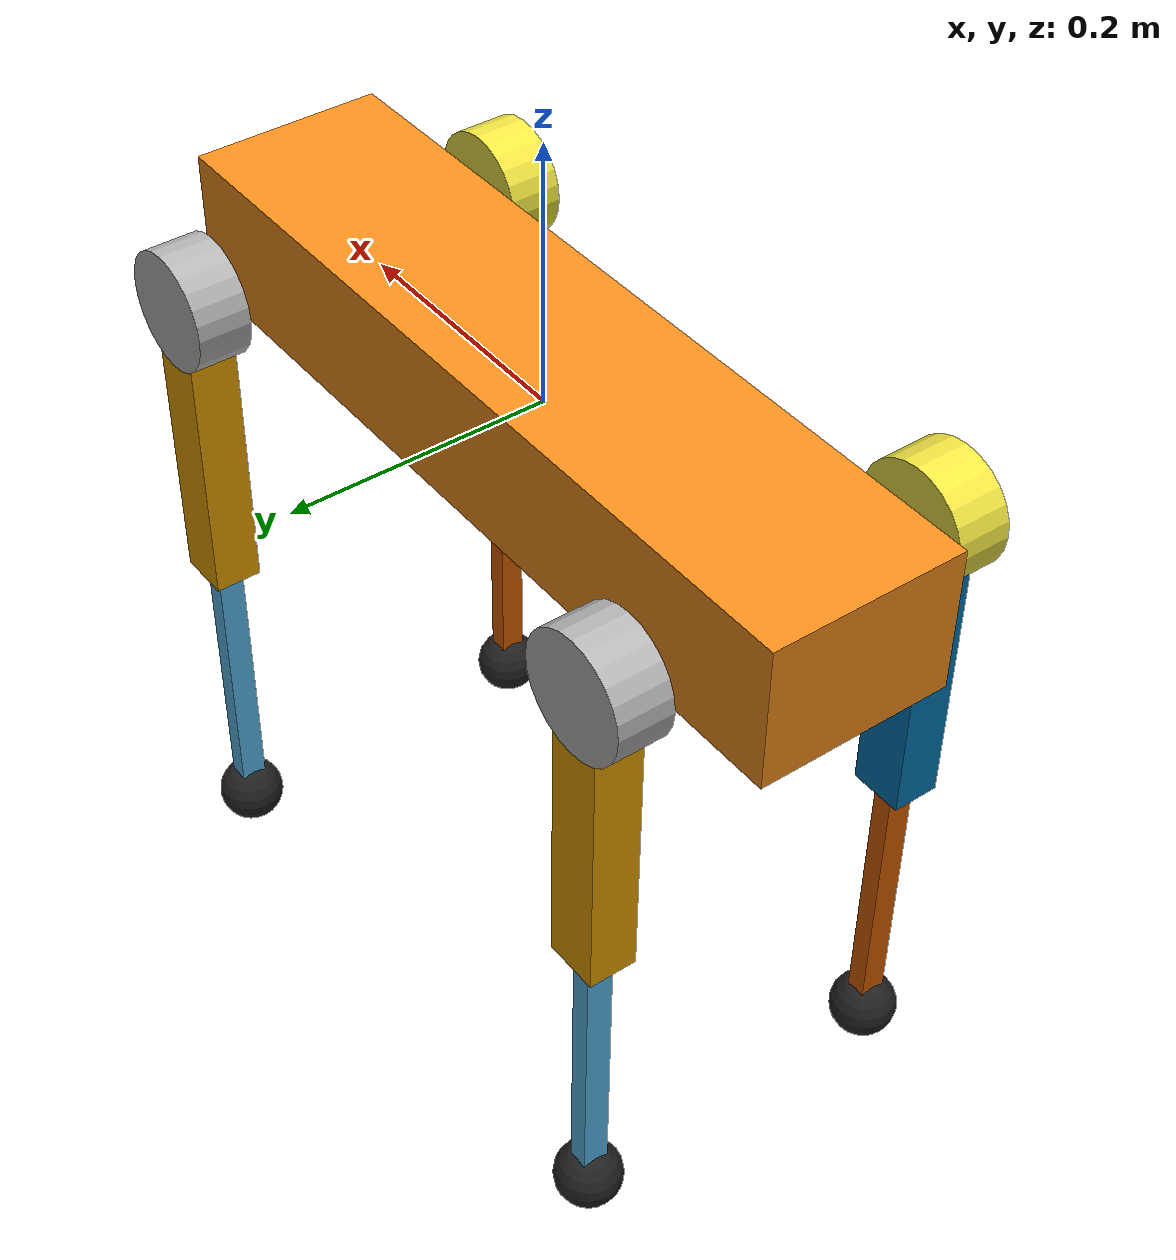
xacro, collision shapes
<?xml version="1.0"?>

<robot name="aliengo" xmlns:xacro="http://www.ros.org/wiki/xacro">

     <!-- This argument allows us to load joint sensors that measure the internal wrenches -->
    <xacro:arg name="load_force_sensors" default="false"/>
    <xacro:arg name="sensors" default="false"/>
    <xacro:arg name="task_period" default="0.004"/>
    <xacro:arg name="arm_enabled" default="false"/>
    <xacro:arg name="arm_name" default="kinova"/>
    <xacro:arg name="robot_name"  default="aliengo"/>
    <xacro:arg name="base_name"   default="trunk"/>

    <!-- load generic materials -->
    <xacro:include filename="$(find aliengo_description)/urdfs/materials.xacro"/>

    <!-- generic simulator_gazebo plugins for starting mechanism control, ros time -->
    <xacro:include filename="$(find aliengo_description)/urdfs/gazebo.urdf.xacro"/>

    <!-- legs transmission and gazebo plugins -->
    <xacro:include filename="$(find aliengo_description)/urdfs/leg.transmission.xacro"/>
    <xacro:include filename="$(find aliengo_description)/urdfs/leg.gazebo.xacro"/>

    <!-- sensors -->
    <xacro:if value="$(arg sensors)">
        <xacro:include filename="$(find sensors_description)/urdfs/sensors/imu.gazebo.xacro"/>
    </xacro:if>

    <xacro:include filename="$(find aliengo_description)/urdfs/const.xacro"/>
    <xacro:include filename="$(find aliengo_description)/urdfs/leg.xacro"/>

    <!-- Rollover Protection mode will add an additional stick on the top, use "true" or "false" to switch it. -->
    <xacro:property name="rolloverProtection" value="false"/>

    <link name="base_link" />

   <joint name="floating_base" type="fixed">
    <origin rpy="0 0 0" xyz="0 0 0"/>
    <parent link="base_link"/>
    <child link="trunk"/>
   </joint>

    <link name="trunk">
        <visual>
            <origin rpy="0 0 0" xyz="0 0 0"/>
            <geometry>
                <mesh filename="package://aliengo_description/meshes/trunk.dae" scale="1 1 1"/>
            </geometry>
            <material name="orange"/>
        </visual>
        <collision>
            <origin rpy="0 0 0" xyz="0 0 0"/>
            <geometry>
                <box size="${trunk_length} ${trunk_width} ${trunk_height}"/>
            </geometry>
        </collision>
        <inertial>
            <origin rpy="0 0 0" xyz="${trunk_com_x} ${trunk_com_y} ${trunk_com_z}"/>
            <mass value="${trunk_mass}"/>
            <inertia
                ixx="${trunk_ixx}" ixy="${trunk_ixy}" ixz="${trunk_ixz}"
                iyy="${trunk_iyy}" iyz="${trunk_iyz}"
                izz="${trunk_izz}"/>
        </inertial>
    </link>

    <xacro:if value="${(rolloverProtection == 'true')}">
        <joint name="stick_joint" type="fixed">
            <parent link="trunk"/>
            <child link="stick_link"/>
            <origin rpy="0 0 0" xyz="${0.18} 0 ${stick_length/2.0+0.08}"/>
        </joint>

        <link name="stick_link">
            <visual>
                <geometry>
                    <cylinder length="${stick_length}" radius="${stick_radius}"/>
                </geometry>
                <origin rpy="0 0 0" xyz="0 0 0"/>
                <material name="white"/>
            </visual>
            <collision>
                <geometry>
                    <cylinder length="${stick_length}" radius="${stick_radius}"/>
                </geometry>
                <origin rpy="0 0 0" xyz="0 0 0"/>
            </collision>
            <inertial>
                <mass value="${stick_mass}"/>
                <inertia
                    ixx="${stick_mass / 2.0 * (stick_radius*stick_radius)}" ixy="0.0" ixz="0.0"
                    iyy="${stick_mass / 12.0 * (3*stick_radius*stick_radius + stick_length*stick_length)}" iyz="0.0"
                    izz="${stick_mass / 12.0 * (3*stick_radius*stick_radius + stick_length*stick_length)}"/>
            </inertial>
        </link>
    </xacro:if>

    <joint name="imu_joint" type="fixed">
        <parent link="trunk"/>
        <child link="trunk_imu"/>
        <origin rpy="0 0 0" xyz="0 0 0"/>
    </joint>

    <link name="trunk_imu">
        <inertial>
            <mass value="0.001"/>
            <origin rpy="0 0 0" xyz="0 0 0"/>
            <inertia ixx="0.0001" ixy="0" ixz="0" iyy="0.000001" iyz="0" izz="0.0001"/>
        </inertial>
        <visual>
            <origin rpy="0 0 0" xyz="0 0 0"/>
            <geometry>
                <box size="0.001 0.001 0.001"/>
            </geometry>
            <material name="red"/>
        </visual>
        <collision>
            <origin rpy="0 0 0" xyz="0 0 0"/>
            <geometry>
                <box size=".001 .001 .001"/>
            </geometry>
        </collision>
    </link>

    <xacro:leg name="rf" mirror="-1" mirror_dae= "False" front_hind="1" front_hind_dae="True">
        <origin rpy="0 0 0" xyz="${leg_offset_x} ${-leg_offset_y} 0"/>
    </xacro:leg>

    <xacro:leg name="lf" mirror="1" mirror_dae="True" front_hind="1" front_hind_dae="True">
        <origin rpy="0 0 0" xyz="${leg_offset_x} ${leg_offset_y} 0"/>
    </xacro:leg>

    <xacro:leg name="rh" mirror="-1" mirror_dae="False" front_hind="-1" front_hind_dae="False">
        <origin rpy="0 0 0" xyz="${-leg_offset_x} ${-leg_offset_y} 0"/>
    </xacro:leg>

    <xacro:leg name="lh" mirror="1" mirror_dae="True" front_hind="-1" front_hind_dae="False">
        <origin rpy="0 0 0" xyz="${-leg_offset_x} ${leg_offset_y} 0"/>
    </xacro:leg>

    <!-- Extensions -->
    <xacro:leg_transmission prefix="rf"/>
    <xacro:leg_gazebo prefix="rf" robot_name="$(arg robot_name)" load_force_sensors="$(arg load_force_sensors)"/>
    <xacro:leg_transmission prefix="lf"/>
    <xacro:leg_gazebo prefix="lf" robot_name="$(arg robot_name)" load_force_sensors="$(arg load_force_sensors)"/>
    <xacro:leg_transmission prefix="rh"/>
    <xacro:leg_gazebo prefix="rh" robot_name="$(arg robot_name)" load_force_sensors="$(arg load_force_sensors)"/>
    <xacro:leg_transmission prefix="lh"/>
    <xacro:leg_gazebo prefix="lh" robot_name="$(arg robot_name)" load_force_sensors="$(arg load_force_sensors)"/>

    <xacro:if value="$(arg arm_enabled)">
           <xacro:include filename="$(find aliengo_description)/urdfs/arm/$(arg arm_name)_adapter.urdf.xacro" />
    </xacro:if>

    <!-- Standard accessories. -->
    <xacro:if value="$(arg sensors)">
	    <!-- IMU -->
	    <gazebo reference="trunk_imu">
		<gravity>true</gravity>
		<sensor name="imu_sensor" type="imu">
		    <always_on>true</always_on>
		    <update_rate>${1/ $(arg task_period)}</update_rate>
		    <visualize>true</visualize>

		    <imu>
		    <linear_acceleration>
		        <x>
		            <noise type="gaussian">
		                <mean>0.0</mean>
		                <stddev>0.00001</stddev>
		                <bias_mean>0.0</bias_mean>
		                <bias_stddev>0</bias_stddev>
		            </noise>
		        </x>
			<y>
		            <noise type="gaussian">
		                <mean>0.0</mean>
		                <stddev>0.00001</stddev>
		                <bias_mean>0.0</bias_mean>
		                <bias_stddev>0</bias_stddev>
		            </noise>
		        </y>
			<z>
		            <noise type="gaussian">
		                <mean>0.0</mean>
		                <stddev>0.00001</stddev>
		                <bias_mean>0.0</bias_mean>
		                <bias_stddev>0.0</bias_stddev>
		            </noise>
		        </z>
		    </linear_acceleration>
		    </imu>

		    <topic>__default_topic__</topic>
		    <plugin filename="libgazebo_ros_imu_sensor.so" name="imu_plugin">
		        <topicName>$(arg robot_name)/trunk_imu</topicName>
		        <bodyName>trunk_imu</bodyName>
		        <updateRateHZ>500</updateRateHZ>
		        <gaussianNoise>0.00001</gaussianNoise>    <!-- STD dev sqrt of covariance -->
		        <xyzOffset>0 0 0</xyzOffset>
		        <rpyOffset>0 0 0</rpyOffset>
		        <frameName>trunk_imu</frameName>
		    </plugin>
		    <pose>0 0 0 0 0 0</pose>
		</sensor>
	    </gazebo>
    </xacro:if>

</robot>

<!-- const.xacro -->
<robot name="aliengo_description" xmlns:xacro="http://www.ros.org/wiki/xacro">

    <!-- Constants for robot dimensions -->
    <xacro:property name="PI" value="3.1415926535897931"/>
    <xacro:property name="stick_mass" value="0.00001"/>

    <!-- simplified collision value -->
    <xacro:property name="trunk_width" value="0.150"/>
    <xacro:property name="trunk_length" value="0.647"/>
    <xacro:property name="trunk_height" value="0.112"/>
    <xacro:property name="hip_radius" value="0.046"/>
    <xacro:property name="hip_length" value="0.0418"/>
    <xacro:property name="upperleg_shoulder_radius" value="0.044"/>
    <xacro:property name="upperleg_shoulder_length" value="0.08"/>
    <xacro:property name="upperleg_width" value="0.0374"/>
    <xacro:property name="upperleg_height" value="0.043"/>
    <xacro:property name="lowerleg_width" value="0.0208"/>
    <xacro:property name="lowerleg_height" value="0.016"/>
    <xacro:property name="foot_radius" value="0.0265"/>
    <xacro:property name="stick_radius" value="0.01"/>
    <xacro:property name="stick_length" value="0.2"/>

    <!-- kinematic value -->
    <xacro:property name="upperleg_offset" value="0.083"/>
    <xacro:property name="upperleg_length" value="0.25"/>
    <xacro:property name="lowerleg_length" value="0.25"/>

    <!-- leg offset from trunk center value -->
    <xacro:property name="leg_offset_x" value="0.2399"/>
    <xacro:property name="leg_offset_y" value="0.051"/>
    <xacro:property name="trunk_offset_z" value="0.01675"/>
    <xacro:property name="hip_offset" value="0.083"/>

    <!-- joint limits -->
    <xacro:property name="damping" value="0"/>
    <xacro:property name="friction" value="0"/>

    <xacro:property name="HAA_position_max" value="${70*PI/180.0}"/>
    <xacro:property name="HAA_position_min" value="${-70*PI/180.0}"/>
    <xacro:property name="HAA_velocity_max" value="20"/>
    <xacro:property name="HAA_effort_max" value="35.278"/>

    <xacro:property name="HFE_position_max" value="${PI}"/>
    <xacro:property name="HFE_position_min" value="${-PI}"/>
    <xacro:property name="HFE_velocity_max" value="20"/>
    <xacro:property name="HFE_effort_max" value="35.278"/>

    <xacro:property name="KFE_position_max" value="${-37*PI/180.0}"/>
    <xacro:property name="KFE_position_min" value="${-159*PI/180.0}"/>
    <xacro:property name="KFE_velocity_max" value="16"/>
    <xacro:property name="KFE_effort_max" value="44.4"/>

    <!-- dynamics inertial value -->
    <!-- trunk -->
    <xacro:property name="trunk_mass" value="12.041"/>
    <xacro:property name="trunk_com_x" value="0.008465"/>
    <xacro:property name="trunk_com_y" value="0.004045"/>
    <xacro:property name="trunk_com_z" value="-0.000763"/>
    <xacro:property name="trunk_ixx" value="0.050874"/>
    <xacro:property name="trunk_ixy" value="-0.000451628"/>
    <xacro:property name="trunk_ixz" value="0.000487603"/>
    <xacro:property name="trunk_iyy" value="0.64036"/>
    <xacro:property name="trunk_iyz" value="0.000048356"/>
    <xacro:property name="trunk_izz" value="0.65655"/>

    <!-- hip (left front) -->
    <xacro:property name="hip_mass" value="1.993"/>
    <xacro:property name="hip_com_x" value="-0.022191"/>
    <xacro:property name="hip_com_y" value="0.015144"/>
    <xacro:property name="hip_com_z" value="-0.000015"/>
    <xacro:property name="hip_ixx" value="0.002903894"/>
    <xacro:property name="hip_ixy" value="-0.000071850"/>
    <xacro:property name="hip_ixz" value="-0.000001262"/>
    <xacro:property name="hip_iyy" value="0.004907517"/>
    <xacro:property name="hip_iyz" value="-0.00000175"/>
    <xacro:property name="hip_izz" value="0.005586944"/>

    <!-- upperleg -->
    <xacro:property name="upperleg_mass" value="0.639"/>
    <xacro:property name="upperleg_com_x" value="-0.005607"/>
    <xacro:property name="upperleg_com_y" value="-0.003877"/>
    <xacro:property name="upperleg_com_z" value="-0.048199"/>
    <xacro:property name="upperleg_ixx" value="0.005666803"/>
    <xacro:property name="upperleg_ixy" value="0.000003597"/>
    <xacro:property name="upperleg_ixz" value="0.000491446"/>
    <xacro:property name="upperleg_iyy" value="0.005847229"/>
    <xacro:property name="upperleg_iyz" value="0.000010086"/>
    <xacro:property name="upperleg_izz" value="0.000369811"/>

    <!-- lowerleg -->
    <xacro:property name="lowerleg_mass" value="0.207"/>
    <xacro:property name="lowerleg_com_x" value="0.002781"/>
    <xacro:property name="lowerleg_com_y" value="0.000063"/>
    <xacro:property name="lowerleg_com_z" value="-0.142518"/>
    <xacro:property name="lowerleg_ixx" value="0.006341369"/>
    <xacro:property name="lowerleg_ixy" value="-0.000000003"/>
    <xacro:property name="lowerleg_ixz" value="-0.000087951"/>
    <xacro:property name="lowerleg_iyy" value="0.006355157"/>
    <xacro:property name="lowerleg_iyz" value="-0.000001336"/>
    <xacro:property name="lowerleg_izz" value="0.000039188"/>

    <!-- foot -->
    <xacro:property name="foot_mass" value="0.06"/>

</robot>

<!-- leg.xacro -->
<robot xmlns:xacro="http://www.ros.org/wiki/xacro">

    <!-- Things that are needed only for Gazebo (not the physical robot). These include sensor and controller plugin specifications -->
    <xacro:include filename="$(find go2_description)/urdfs/leg.transmission.xacro"/>
    <xacro:include filename="$(find go2_description)/urdfs/leg.gazebo.xacro"/>

    <xacro:macro name="leg" params="name mirror mirror_dae front_hind front_hind_dae">

        <joint name="${name}_haa_joint" type="revolute">
            <xacro:if value="${(mirror_dae == False) and (front_hind_dae == True)}">
                <origin rpy="0 0 0" xyz="${leg_offset_x} ${-leg_offset_y} 0"/>
            </xacro:if>
            <xacro:if value="${(mirror_dae == True) and (front_hind_dae == True)}">
                <origin rpy="0 0 0" xyz="${leg_offset_x} ${leg_offset_y} 0"/>
            </xacro:if>
            <xacro:if value="${(mirror_dae == False) and (front_hind_dae == False)}">
                <origin rpy="0 0 0" xyz="${-leg_offset_x} ${-leg_offset_y} 0"/>
            </xacro:if>
            <xacro:if value="${(mirror_dae == True) and (front_hind_dae == False)}">
                <origin rpy="0 0 0" xyz="${-leg_offset_x} ${leg_offset_y} 0"/>
            </xacro:if>
            <parent link="trunk"/>
            <child link="${name}_hip"/>
            <axis xyz="1 0 0"/>
            <dynamics damping="${damping}" friction="${friction}"/>
            <xacro:if value="${(mirror_dae == True)}">
                <limit effort="${haa_torque_max}" velocity="${haa_velocity_max}" lower="${haa_min}" upper="${haa_max}"/>
            </xacro:if>
            <xacro:if value="${(mirror_dae == False)}">
                <limit effort="${haa_torque_max}" velocity="${haa_velocity_max}" lower="${-haa_max}" upper="${-haa_min}"/>
            </xacro:if>
        </joint>

        <link name="${name}_hip">
            <visual>
                <xacro:if value="${(mirror_dae == True) and (front_hind_dae == True)}">
                    <origin rpy="0 0 0" xyz="0 0 0"/>
                </xacro:if>
                <xacro:if value="${(mirror_dae == False) and (front_hind_dae == True)}">
                    <origin rpy="${PI} 0 0" xyz="0 0 0"/>
                </xacro:if>
                <xacro:if value="${(mirror_dae == True) and (front_hind_dae == False)}">
                    <origin rpy="0 ${PI} 0" xyz="0 0 0"/>
                </xacro:if>
                <xacro:if value="${(mirror_dae == False) and (front_hind_dae == False)}">
                    <origin rpy="${PI} ${PI} 0" xyz="0 0 0"/>
                </xacro:if>
                <geometry>
                    <mesh filename="package://go2_description/meshes/hip.dae" scale="1 1 1"/>
                </geometry>
            </visual>
            <collision>
                <origin rpy="${PI/2.0} 0 0" xyz="0 ${hip_offset*mirror} 0"/>
                <geometry>
                    <cylinder length="${hip_length}" radius="${hip_radius}"/>
                </geometry>
            </collision>
            <inertial>
                <origin rpy="0 0 0" xyz="${hip_com_x*front_hind} ${hip_com_y*mirror} ${hip_com_z}"/>
                <mass value="${hip_mass}"/>
                <inertia
                    ixx="${hip_ixx}" ixy="${hip_ixy*mirror*front_hind}" ixz="${hip_ixz*front_hind}"
                    iyy="${hip_iyy}" iyz="${hip_iyz*mirror}"
                    izz="${hip_izz}"/>
            </inertial>
        </link>

        <joint name="${name}_hfe_joint" type="revolute">
            <origin rpy="0 0 0" xyz="0 ${upperleg_offset*mirror} 0"/>
            <parent link="${name}_hip"/>
            <child link="${name}_upperleg"/>
            <axis xyz="0 1 0"/>
            <dynamics damping="${damping}" friction="${friction}"/>
            <limit effort="${hfe_torque_max}" velocity="${hfe_velocity_max}" lower="${hfe_min}" upper="${hfe_max}"/>
        </joint>

        <link name="${name}_upperleg">
            <visual>
                <origin rpy="0 0 0" xyz="0 0 0"/>
                <geometry>
                    <xacro:if value="${mirror_dae == True}">
                        <mesh filename="package://go2_description/meshes/upperleg.dae" scale="1 1 1"/>
                    </xacro:if>
                    <xacro:if value="${mirror_dae == False}">
                        <mesh filename="package://go2_description/meshes/upperleg_mirror.dae" scale="1 1 1"/>
                    </xacro:if>
                </geometry>
            </visual>
            <collision>
                <origin rpy="0 ${PI/2.0} 0" xyz="0 0 ${-upperleg_length/2.0}"/>
                <geometry>
                    <box size="${upperleg_length} ${upperleg_width} ${upperleg_height}"/>
                </geometry>
            </collision>
            <inertial>
                <origin rpy="0 0 0" xyz="${upperleg_com_x} ${upperleg_com_y*mirror} ${upperleg_com_z}"/>
                <mass value="${upperleg_mass}"/>
                <inertia
                    ixx="${upperleg_ixx}" ixy="${upperleg_ixy*mirror}" ixz="${upperleg_ixz}"
                    iyy="${upperleg_iyy}" iyz="${upperleg_iyz*mirror}"
                    izz="${upperleg_izz}"/>
            </inertial>
        </link>

        <joint name="${name}_kfe_joint" type="revolute">
            <origin rpy="0 0 0" xyz="0 0 ${-upperleg_length}"/>
            <parent link="${name}_upperleg"/>
            <child link="${name}_lowerleg"/>
            <axis xyz="0 1 0"/>
            <dynamics damping="${damping}" friction="${friction}"/>
            <limit effort="${kfe_torque_max}" velocity="${kfe_velocity_max}" lower="${kfe_min}" upper="${kfe_max}"/>
        </joint>

        <link name="${name}_lowerleg">
            <visual>
                <origin rpy="0 0 0" xyz="0 0 0"/>
                <geometry>
                    <mesh filename="package://go2_description/meshes/lowerleg.dae" scale="1 1 1"/>
                </geometry>
            </visual>
            <collision>
                <origin rpy="0 ${PI/2.0} 0" xyz="0 0 ${-lowerleg_length/2.0}"/>
                <geometry>
                    <box size="${lowerleg_length} ${lowerleg_width} ${lowerleg_height}"/>
                </geometry>
            </collision>
            <inertial>
                <origin rpy="0 0 0" xyz="${lowerleg_com_x} ${lowerleg_com_y} ${lowerleg_com_z}"/>
                <mass value="${lowerleg_mass}"/>
                <inertia
                    ixx="${lowerleg_ixx}" ixy="${lowerleg_ixy}" ixz="${lowerleg_ixz}"
                    iyy="${lowerleg_iyy}" iyz="${lowerleg_iyz}"
                    izz="${lowerleg_izz}"/>
            </inertial>
        </link>

        <joint name="${name}_foot_fixed" type="fixed">0
            <origin rpy="0 0 0" xyz="0 0 ${-(lowerleg_length)}"/>
            <parent link="${name}_lowerleg"/>
            <child link="${name}_foot"/>
        </joint>

        <link name="${name}_foot">
            <visual>
                <origin rpy="0 0 0" xyz="0 0 0"/>
                <geometry>
                    <sphere radius="${foot_radius-0.01}"/>
                </geometry>
            </visual>
            <collision>
                <origin rpy="0 0 0" xyz="0 0 0"/>
                <geometry>
                    <sphere radius="${foot_radius}"/>
                </geometry>
            </collision>
            <inertial>
                <mass value="${foot_mass}"/>
                <inertia
                    ixx="${(2*foot_mass)/5.0*(foot_radius*foot_radius)}" ixy="0.0" ixz="0.0"
                    iyy="${(2*foot_mass)/5.0*(foot_radius*foot_radius)}" iyz="0.0"
                    izz="${(2*foot_mass)/5.0*(foot_radius*foot_radius)}"/>
            </inertial>
        </link>

        <xacro:leg_transmission name="${name}"/>
        <xacro:leg_gazebo name="${name}"/>
    </xacro:macro>
</robot>
